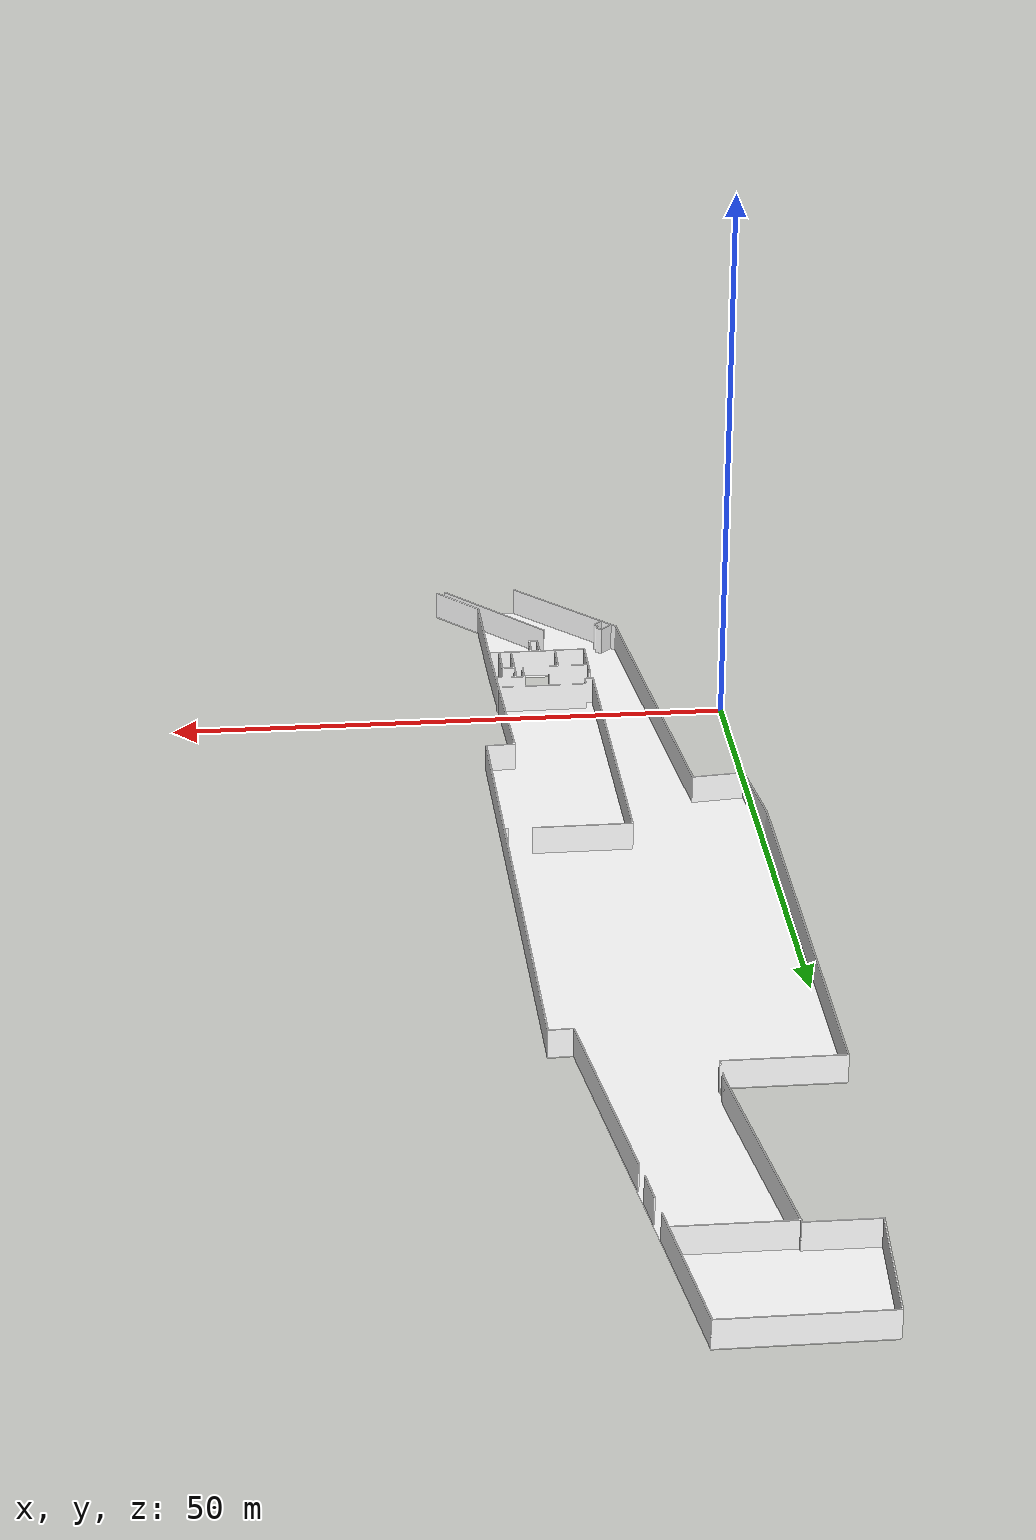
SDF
<?xml version='1.0' encoding='utf-8'?>
<sdf version="1.7">
  <model name="trl_TRL_L6">
    <static>true</static>
    <link name="floor_1">
      <visual name="visual">
        <geometry>
          <mesh>
            <uri>model://trl_TRL_L6/meshes/floor_1.obj</uri>
          </mesh>
        </geometry>
        <material>
          <diffuse>1.0 1.0 1.0</diffuse>
          <specular>0.1 0.1 0.1</specular>
          <pbr>
            <metal>
              <metalness>0.0</metalness>
              <albedo_map>model://trl_TRL_L6/meshes/blue_linoleum.png</albedo_map>
            </metal>
          </pbr>
          <script>
            <uri>model://trl_TRL_L6/meshes/</uri>
            <name>floor_1_Diffuse</name>
          </script>
        </material>
      </visual>
      <collision name="collision">
        <geometry>
          <mesh>
            <uri>model://trl_TRL_L6/meshes/floor_1.obj</uri>
          </mesh>
        </geometry>
        <surface>
          <contact>
            <collide_bitmask>0x01</collide_bitmask>
          </contact>
        </surface>
      </collision>
    </link>
    <link name="wall_1">
      <visual name="wall_1">
        <geometry>
          <mesh>
            <uri>model://trl_TRL_L6/meshes/wall_1.obj</uri>
          </mesh>
        </geometry>
        <transparency>0.0</transparency>
        <material>
          <diffuse>1.0 1.0 1.0</diffuse>
          <specular>0.1 0.1 0.1</specular>
          <pbr>
            <metal>
              <metalness>0.0</metalness>
              <albedo_map>model://trl_TRL_L6/meshes/default.png</albedo_map>
            </metal>
          </pbr>
          <script>
            <uri>model://trl_TRL_L6/meshes/</uri>
            <name>wall_1_Diffuse</name>
          </script>
        </material>
      </visual>
      <collision name="collision">
        <geometry>
          <mesh>
            <uri>model://trl_TRL_L6/meshes/wall_1.obj</uri>
          </mesh>
        </geometry>
        <surface>
          <contact>
            <collide_bitmask>0x01</collide_bitmask>
          </contact>
        </surface>
      </collision>
      <pose>-0.5239490546777724 -22.352568578706514 0 0 0 0</pose>
    </link>
  </model>
</sdf>
